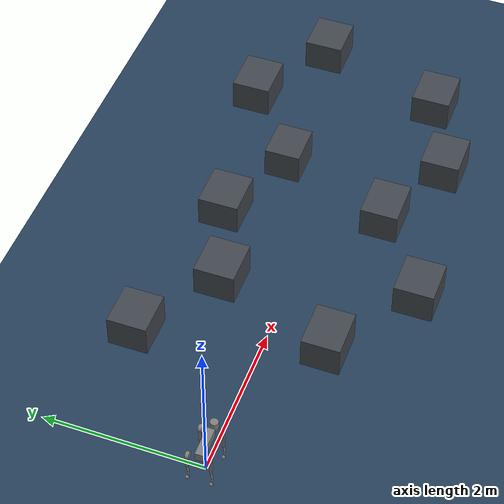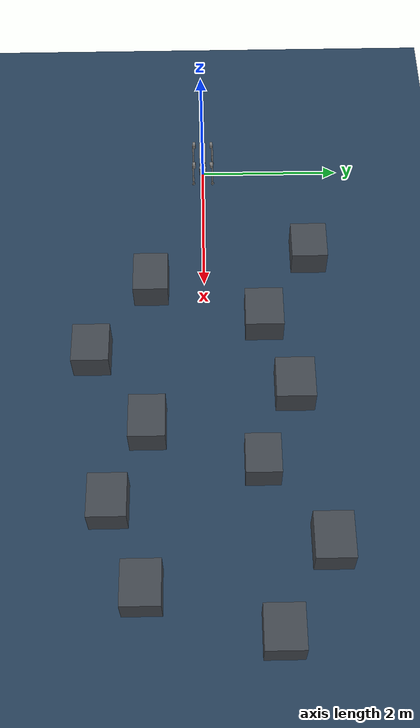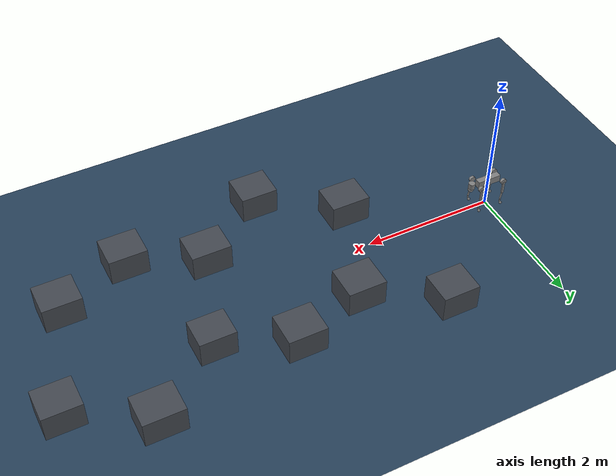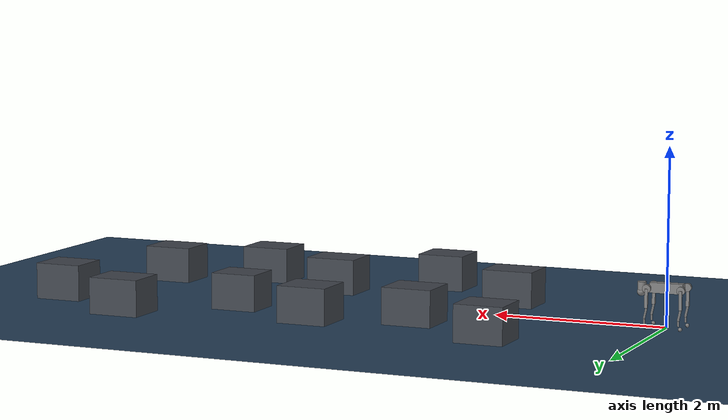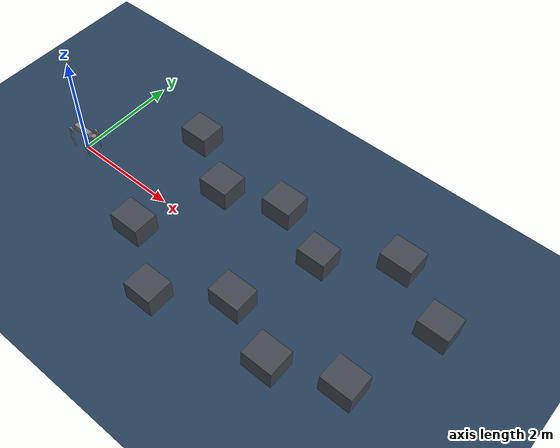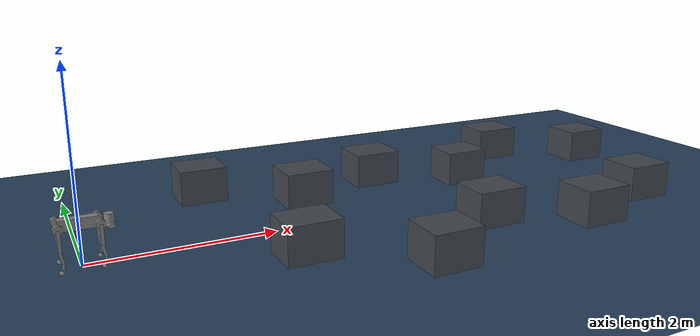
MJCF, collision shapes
<?xml version='1.0' encoding='utf-8'?>
<mujoco model="go2 ppt dense">
  <include file="go2.xml" />
  <statistic center="2.8 0 0.1" extent="5.0" />
  <visual>
    <headlight diffuse="0.6 0.6 0.6" ambient="0.3 0.3 0.3" specular="0 0 0" />
    <rgba haze="0.15 0.25 0.35 1" />
    <global azimuth="135" elevation="-40" />
  </visual>
  <asset>
    <texture type="skybox" builtin="gradient" rgb1="0.3 0.5 0.7" rgb2="0 0 0" width="512" height="3072" />
    <texture type="2d" name="ppt_groundplane" builtin="checker" mark="edge" rgb1="0.2 0.3 0.4" rgb2="0.1 0.2 0.3" markrgb="0.8 0.8 0.8" width="300" height="300" />
    <material name="ppt_groundplane" texture="ppt_groundplane" texuniform="true" texrepeat="5 5" reflectance="0.2" />
  </asset>
  <worldbody>
    <light pos="1 0 7" dir="0 0 -1" directional="true" />
    <geom name="floor" type="plane" pos="3 0 0" size="6 3.5 0.05" material="ppt_groundplane" />
    <geom name="ppt_obstacle_01" type="box" pos="1.55 1.49 0.21" size="0.28 0.25 0.21" rgba="0.26 0.28 0.31 1" />
    <geom name="ppt_obstacle_02" type="box" pos="2.05 -0.74 0.21" size="0.3 0.24 0.21" rgba="0.26 0.28 0.31 1" />
    <geom name="ppt_obstacle_03" type="box" pos="2.65 0.82 0.21" size="0.29 0.26 0.21" rgba="0.26 0.28 0.31 1" />
    <geom name="ppt_obstacle_04" type="box" pos="3.18 -1.52 0.21" size="0.28 0.25 0.21" rgba="0.26 0.28 0.31 1" />
    <geom name="ppt_obstacle_05" type="box" pos="3.75 1.19 0.21" size="0.29 0.26 0.21" rgba="0.26 0.28 0.31 1" />
    <geom name="ppt_obstacle_06" type="box" pos="4.28 -0.75 0.21" size="0.3 0.24 0.21" rgba="0.26 0.28 0.31 1" />
    <geom name="ppt_obstacle_07" type="box" pos="4.83 0.73 0.21" size="0.27 0.23 0.21" rgba="0.26 0.28 0.31 1" />
    <geom name="ppt_obstacle_08" type="box" pos="5.36 -1.22 0.21" size="0.29 0.25 0.21" rgba="0.26 0.28 0.31 1" />
    <geom name="ppt_obstacle_09" type="box" pos="5.92 1.55 0.21" size="0.3 0.25 0.21" rgba="0.26 0.28 0.31 1" />
    <geom name="ppt_obstacle_10" type="box" pos="6.47 -0.78 0.21" size="0.29 0.25 0.21" rgba="0.26 0.28 0.31 1" />
    <geom name="ppt_obstacle_11" type="box" pos="7.02 0.9 0.21" size="0.28 0.25 0.21" rgba="0.26 0.28 0.31 1" />
  </worldbody>
</mujoco>

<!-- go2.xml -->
<mujoco model="go2">
  <compiler angle="radian" meshdir="assets" autolimits="true" />

  <option cone="elliptic" impratio="100" />

  <default>
    <default class="go2">
      <geom friction="0.4" margin="0.001" condim="1"/>
      <joint axis="0 1 0" damping="0.1" armature="0.01" frictionloss="0.2"/>
      <motor ctrlrange="-23.7 23.7"/>
      <default class="abduction">
        <joint axis="1 0 0" range="-1.0472 1.0472"/>
      </default>
      <default class="hip">
        <default class="front_hip">
          <joint range="-1.5708 3.4907"/>
        </default>
        <default class="back_hip">
          <joint range="-0.5236 4.5379"/>
        </default>
      </default>
      <default class="knee">
        <joint range="-2.7227 -0.83776"/>
        <motor ctrlrange="-45.43 45.43"/>
      </default>
      <default class="visual">
        <geom type="mesh" contype="0" conaffinity="0" group="2"/>
      </default>
      <default class="collision">
        <geom group="3"/>
        <default class="foot">
          <geom size="0.022" pos="-0.002 0 -0.213" priority="1" condim="6"
            friction="0.4 0.02 0.01"/>
        </default>
      </default>
    </default>
  </default>

  <asset>
    <material name="metal" rgba=".9 .95 .95 1" />
    <material name="black" rgba="0 0 0 1" />
    <material name="white" rgba="1 1 1 1" />
    <material name="gray" rgba="0.671705 0.692426 0.774270 1" />
    <material name="transparent" rgba="1 1 1 0.01" />

    <mesh file="base_0.obj" />
    <mesh file="base_1.obj" />
    <mesh file="base_2.obj" />
    <mesh file="base_3.obj" />
    <mesh file="base_4.obj" />
    <mesh file="hip_0.obj" />
    <mesh file="hip_1.obj" />
    <mesh file="thigh_0.obj" />
    <mesh file="thigh_1.obj" />
    <mesh file="thigh_mirror_0.obj" />
    <mesh file="thigh_mirror_1.obj" />
    <mesh file="calf_0.obj" />
    <mesh file="calf_1.obj" />
    <mesh file="calf_mirror_0.obj" />
    <mesh file="calf_mirror_1.obj" />
    <mesh file="foot.obj" />
  </asset>

  <worldbody>
    <body name="base_link" pos="0 0 0.445" childclass="go2">
      <inertial pos="0.021112 0 -0.005366" quat="-0.000543471 0.713435 -0.00173769 0.700719"
        mass="6.921"
        diaginertia="0.107027 0.0980771 0.0244531" />
      <freejoint />
      <geom mesh="base_0" material="black" class="visual" />
      <geom mesh="base_1" material="black" class="visual" />
      <geom mesh="base_2" material="black" class="visual" />
      <geom mesh="base_3" material="white" class="visual" />
      <geom mesh="base_4" material="gray" class="visual" />
      <geom size="0.1881 0.04675 0.057" type="box" class="collision" />
      <geom size="0.05 0.045" pos="0.285 0 0.01" type="cylinder" class="collision" />
      <geom size="0.047" pos="0.293 0 -0.06" class="collision" />
      <site name="imu" pos="-0.02557 0 0.04232" />
      <body name="FL_hip" pos="0.1934 0.0465 0">
        <inertial pos="-0.0054 0.00194 -0.000105" quat="0.497014 0.499245 0.505462 0.498237"
          mass="0.678"
          diaginertia="0.00088403 0.000596003 0.000479967" />
        <joint name="FL_hip_joint" class="abduction" />
        <geom mesh="hip_0" material="metal" class="visual" />
        <geom mesh="hip_1" material="gray" class="visual" />
        <geom size="0.046 0.02" pos="0 0.08 0" quat="1 1 0 0" type="cylinder" class="collision" />
        <body name="FL_thigh" pos="0 0.0955 0">
          <inertial pos="-0.00374 -0.0223 -0.0327" quat="0.829533 0.0847635 -0.0200632 0.551623"
            mass="1.152"
            diaginertia="0.00594973 0.00584149 0.000878787" />
          <joint name="FL_thigh_joint" class="front_hip" />
          <geom mesh="thigh_0" material="metal" class="visual" />
          <geom mesh="thigh_1" material="gray" class="visual" />
          <geom size="0.1065 0.01225 0.017" pos="0 0 -0.1065" quat="0.707107 0 0.707107 0"
            type="box" class="collision" />
          <body name="FL_calf" pos="0 0 -0.213">
            <inertial pos="0.00629595 -0.000622121 -0.141417"
              quat="0.710672 0.00154099 -0.00450087 0.703508"
              mass="0.241352" diaginertia="0.0014901 0.00146356 5.31397e-05" />
            <joint name="FL_calf_joint" class="knee" />
            <geom mesh="calf_0" material="gray" class="visual" />
            <geom mesh="calf_1" material="black" class="visual" />
            <geom size="0.012 0.06" pos="0.008 0 -0.06" quat="0.994493 0 -0.104807 0"
              type="cylinder" class="collision" />
            <geom size="0.011 0.0325" pos="0.02 0 -0.148" quat="0.999688 0 0.0249974 0"
              type="cylinder" class="collision" />
            <geom pos="0 0 -0.213" mesh="foot" class="visual" material="black" />
            <geom name="FL" class="foot" />
            <site name="FL_touch" pos="0 0 -0.213" size="0.027" material="transparent"/>
            <body name="FL_foot" pos="0 0 -0.213"/>
          </body>
        </body>
      </body>
      <body name="FR_hip" pos="0.1934 -0.0465 0">
        <inertial pos="-0.0054 -0.00194 -0.000105" quat="0.498237 0.505462 0.499245 0.497014"
          mass="0.678"
          diaginertia="0.00088403 0.000596003 0.000479967" />
        <joint name="FR_hip_joint" class="abduction" />
        <geom mesh="hip_0" material="metal" class="visual" quat="4.63268e-05 1 0 0" />
        <geom mesh="hip_1" material="gray" class="visual" quat="4.63268e-05 1 0 0" />
        <geom size="0.046 0.02" pos="0 -0.08 0" quat="0.707107 0.707107 0 0" type="cylinder"
          class="collision" />
        <body name="FR_thigh" pos="0 -0.0955 0">
          <inertial pos="-0.00374 0.0223 -0.0327" quat="0.551623 -0.0200632 0.0847635 0.829533"
            mass="1.152"
            diaginertia="0.00594973 0.00584149 0.000878787" />
          <joint name="FR_thigh_joint" class="front_hip" />
          <geom mesh="thigh_mirror_0" material="metal" class="visual" />
          <geom mesh="thigh_mirror_1" material="gray" class="visual" />
          <geom size="0.1065 0.01225 0.017" pos="0 0 -0.1065" quat="0.707107 0 0.707107 0"
            type="box" class="collision" />
          <body name="FR_calf" pos="0 0 -0.213">
            <inertial pos="0.00629595 0.000622121 -0.141417"
              quat="0.703508 -0.00450087 0.00154099 0.710672"
              mass="0.241352" diaginertia="0.0014901 0.00146356 5.31397e-05" />
            <joint name="FR_calf_joint" class="knee" />
            <geom mesh="calf_mirror_0" material="gray" class="visual" />
            <geom mesh="calf_mirror_1" material="black" class="visual" />
            <geom size="0.013 0.06" pos="0.01 0 -0.06" quat="0.995004 0 -0.0998334 0"
              type="cylinder" class="collision" />
            <geom size="0.011 0.0325" pos="0.02 0 -0.148" quat="0.999688 0 0.0249974 0"
              type="cylinder" class="collision" />
            <geom pos="0 0 -0.213" mesh="foot" class="visual" material="black" />
            <geom name="FR" class="foot" />
            <site name="FR_touch" pos="0 0 -0.213" size="0.027" material="transparent"/>
            <body name="FR_foot" pos="0 0 -0.213"/>
          </body>
        </body>
      </body>
      <body name="RL_hip" pos="-0.1934 0.0465 0">
        <inertial pos="0.0054 0.00194 -0.000105" quat="0.505462 0.498237 0.497014 0.499245"
          mass="0.678"
          diaginertia="0.00088403 0.000596003 0.000479967" />
        <joint name="RL_hip_joint" class="abduction" />
        <geom mesh="hip_0" material="metal" class="visual" quat="4.63268e-05 0 1 0" />
        <geom mesh="hip_1" material="gray" class="visual" quat="4.63268e-05 0 1 0" />
        <geom size="0.046 0.02" pos="0 0.08 0" quat="0.707107 0.707107 0 0" type="cylinder"
          class="collision" />
        <body name="RL_thigh" pos="0 0.0955 0">
          <inertial pos="-0.00374 -0.0223 -0.0327" quat="0.829533 0.0847635 -0.0200632 0.551623"
            mass="1.152"
            diaginertia="0.00594973 0.00584149 0.000878787" />
          <joint name="RL_thigh_joint" class="back_hip" />
          <geom mesh="thigh_0" material="metal" class="visual" />
          <geom mesh="thigh_1" material="gray" class="visual" />
          <geom size="0.1065 0.01225 0.017" pos="0 0 -0.1065" quat="0.707107 0 0.707107 0"
            type="box" class="collision" />
          <body name="RL_calf" pos="0 0 -0.213">
            <inertial pos="0.00629595 -0.000622121 -0.141417"
              quat="0.710672 0.00154099 -0.00450087 0.703508"
              mass="0.241352" diaginertia="0.0014901 0.00146356 5.31397e-05" />
            <joint name="RL_calf_joint" class="knee" />
            <geom mesh="calf_0" material="gray" class="visual" />
            <geom mesh="calf_1" material="black" class="visual" />
            <geom size="0.013 0.06" pos="0.01 0 -0.06" quat="0.995004 0 -0.0998334 0"
              type="cylinder" class="collision" />
            <geom size="0.011 0.0325" pos="0.02 0 -0.148" quat="0.999688 0 0.0249974 0"
              type="cylinder" class="collision" />
            <geom pos="0 0 -0.213" mesh="foot" class="visual" material="black" />
            <geom name="RL" class="foot" />
            <site name="RL_touch" pos="0 0 -0.213" size="0.027" material="transparent"/>
            <body name="RL_foot" pos="0 0 -0.213" />
          </body>
        </body>
      </body>
      <body name="RR_hip" pos="-0.1934 -0.0465 0">
        <inertial pos="0.0054 -0.00194 -0.000105" quat="0.499245 0.497014 0.498237 0.505462"
          mass="0.678"
          diaginertia="0.00088403 0.000596003 0.000479967" />
        <joint name="RR_hip_joint" class="abduction" />
        <geom mesh="hip_0" material="metal" class="visual"
          quat="2.14617e-09 4.63268e-05 4.63268e-05 -1" />
        <geom mesh="hip_1" material="gray" class="visual"
          quat="2.14617e-09 4.63268e-05 4.63268e-05 -1" />
        <geom size="0.046 0.02" pos="0 -0.08 0" quat="0.707107 0.707107 0 0" type="cylinder"
          class="collision" />
        <body name="RR_thigh" pos="0 -0.0955 0">
          <inertial pos="-0.00374 0.0223 -0.0327" quat="0.551623 -0.0200632 0.0847635 0.829533"
            mass="1.152"
            diaginertia="0.00594973 0.00584149 0.000878787" />
          <joint name="RR_thigh_joint" class="back_hip" />
          <geom mesh="thigh_mirror_0" material="metal" class="visual" />
          <geom mesh="thigh_mirror_1" material="gray" class="visual" />
          <geom size="0.1065 0.01225 0.017" pos="0 0 -0.1065" quat="0.707107 0 0.707107 0"
            type="box" class="collision" />
          <body name="RR_calf" pos="0 0 -0.213">
            <inertial pos="0.00629595 0.000622121 -0.141417"
              quat="0.703508 -0.00450087 0.00154099 0.710672"
              mass="0.241352" diaginertia="0.0014901 0.00146356 5.31397e-05" />
            <joint name="RR_calf_joint" class="knee" />
            <geom mesh="calf_mirror_0" material="gray" class="visual" />
            <geom mesh="calf_mirror_1" material="black" class="visual" />
            <geom size="0.013 0.06" pos="0.01 0 -0.06" quat="0.995004 0 -0.0998334 0"
              type="cylinder" class="collision" />
            <geom size="0.011 0.0325" pos="0.02 0 -0.148" quat="0.999688 0 0.0249974 0"
              type="cylinder" class="collision" />
            <geom pos="0 0 -0.213" mesh="foot" class="visual" material="black" />
            <geom name="RR" class="foot" />
            <site name="RR_touch" pos="0 0 -0.213" size="0.027" material="transparent"/>
            <body name="RR_foot" pos="0 0 -0.213"/>
          </body>
        </body>
      </body>
    </body>
  </worldbody>

  <actuator>
    <motor class="abduction" name="FR_hip" joint="FR_hip_joint" />
    <motor class="hip" name="FR_thigh" joint="FR_thigh_joint" />
    <motor class="knee" name="FR_calf" joint="FR_calf_joint" />
    <motor class="abduction" name="FL_hip" joint="FL_hip_joint" />
    <motor class="hip" name="FL_thigh" joint="FL_thigh_joint" />
    <motor class="knee" name="FL_calf" joint="FL_calf_joint" />
    <motor class="abduction" name="RR_hip" joint="RR_hip_joint" />
    <motor class="hip" name="RR_thigh" joint="RR_thigh_joint" />
    <motor class="knee" name="RR_calf" joint="RR_calf_joint" />
    <motor class="abduction" name="RL_hip" joint="RL_hip_joint" />
    <motor class="hip" name="RL_thigh" joint="RL_thigh_joint" />
    <motor class="knee" name="RL_calf" joint="RL_calf_joint" />
  </actuator>

  <sensor>
    <jointpos name="FR_hip_pos" joint="FR_hip_joint" />
    <jointpos name="FR_thigh_pos" joint="FR_thigh_joint" />
    <jointpos name="FR_calf_pos" joint="FR_calf_joint" />
    <jointpos name="FL_hip_pos" joint="FL_hip_joint" />
    <jointpos name="FL_thigh_pos" joint="FL_thigh_joint" />
    <jointpos name="FL_calf_pos" joint="FL_calf_joint" />
    <jointpos name="RR_hip_pos" joint="RR_hip_joint" />
    <jointpos name="RR_thigh_pos" joint="RR_thigh_joint" />
    <jointpos name="RR_calf_pos" joint="RR_calf_joint" />
    <jointpos name="RL_hip_pos" joint="RL_hip_joint" />
    <jointpos name="RL_thigh_pos" joint="RL_thigh_joint" />
    <jointpos name="RL_calf_pos" joint="RL_calf_joint" />

    <jointvel name="FR_hip_vel" joint="FR_hip_joint" />
    <jointvel name="FR_thigh_vel" joint="FR_thigh_joint" />
    <jointvel name="FR_calf_vel" joint="FR_calf_joint" />
    <jointvel name="FL_hip_vel" joint="FL_hip_joint" />
    <jointvel name="FL_thigh_vel" joint="FL_thigh_joint" />
    <jointvel name="FL_calf_vel" joint="FL_calf_joint" />
    <jointvel name="RR_hip_vel" joint="RR_hip_joint" />
    <jointvel name="RR_thigh_vel" joint="RR_thigh_joint" />
    <jointvel name="RR_calf_vel" joint="RR_calf_joint" />
    <jointvel name="RL_hip_vel" joint="RL_hip_joint" />
    <jointvel name="RL_thigh_vel" joint="RL_thigh_joint" />
    <jointvel name="RL_calf_vel" joint="RL_calf_joint" />

    <jointactuatorfrc name="FR_hip_torque" joint="FR_hip_joint" noise="0.01" />
    <jointactuatorfrc name="FR_thigh_torque" joint="FR_thigh_joint" noise="0.01" />
    <jointactuatorfrc name="FR_calf_torque" joint="FR_calf_joint" noise="0.01" />
    <jointactuatorfrc name="FL_hip_torque" joint="FL_hip_joint" noise="0.01" />
    <jointactuatorfrc name="FL_thigh_torque" joint="FL_thigh_joint" noise="0.01" />
    <jointactuatorfrc name="FL_calf_torque" joint="FL_calf_joint" noise="0.01" />
    <jointactuatorfrc name="RR_hip_torque" joint="RR_hip_joint" noise="0.01" />
    <jointactuatorfrc name="RR_thigh_torque" joint="RR_thigh_joint" noise="0.01" />
    <jointactuatorfrc name="RR_calf_torque" joint="RR_calf_joint" noise="0.01" />
    <jointactuatorfrc name="RL_hip_torque" joint="RL_hip_joint" noise="0.01" />
    <jointactuatorfrc name="RL_thigh_torque" joint="RL_thigh_joint" noise="0.01" />
    <jointactuatorfrc name="RL_calf_torque" joint="RL_calf_joint" noise="0.01" />

    <framequat name="imu_quat" objtype="site" objname="imu" />
    <gyro name="imu_gyro" site="imu" />
    <accelerometer name="imu_acc" site="imu" />

    <framepos name="frame_pos" objtype="site" objname="imu" />
    <framelinvel name="frame_vel" objtype="site" objname="imu" />

    <touch name="FR_touch" site="FR_touch" />
    <touch name="FL_touch" site="FL_touch" />
    <touch name="RR_touch" site="RR_touch" />
    <touch name="RL_touch" site="RL_touch" />
  </sensor>

  <keyframe>
    <key name="home" qpos="0 0 0.445 1 0 0 0 0 0.8 -1.5 0 0.8 -1.5 0 0.8 -1.5 0 0.8 -1.5"
         ctrl="0 0 0 0 0 0 0 0 0 0 0 0" />
  </keyframe>
</mujoco>
